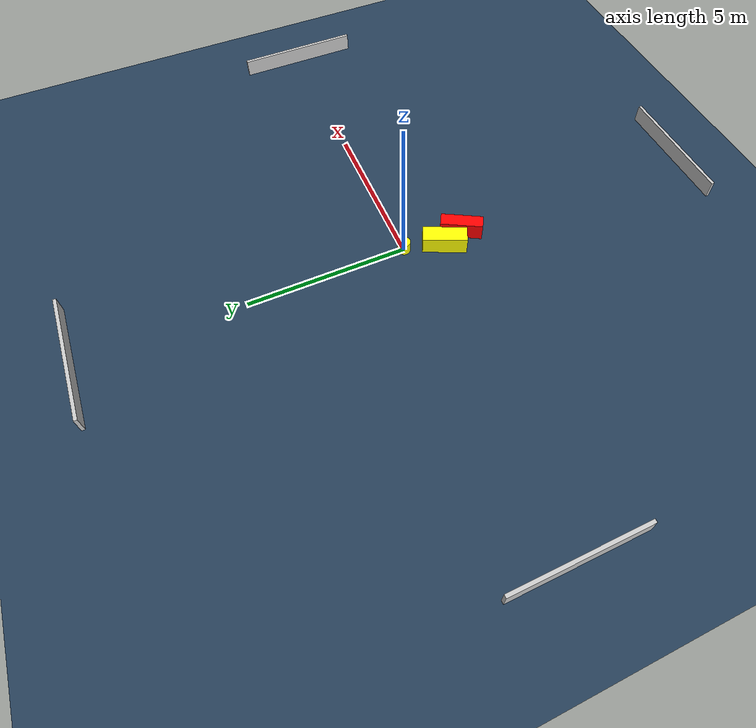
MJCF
<?xml version="1.0" ?>
<mujoco model="generated_environment">
  <option timestep="0.01" integrator="RK4" cone="elliptic"/>
  <default>
    <geom density="1"/>
  </default>
  <asset>
    <texture builtin="gradient" height="3072" name="skybox" rgb1="0.3 0.5 0.7" rgb2="0 0 0" type="skybox" width="512"/>
    <texture builtin="checker" height="300" name="groundplane" rgb1="0.2 0.3 0.4" rgb2="0.1 0.2 0.3" type="2d" width="300"/>
    <material name="groundplane" reflectance="0.2" texrepeat="5 5" texture="groundplane"/>
  </asset>
  <worldbody>
    <light dir="0 0 -1" directional="true" pos="0 0 1.5"/>
    <geom condim="3" friction="0.5 0.005 0.001" material="groundplane" name="floor" pos="0 0 0" size="0 0 0.05" type="plane"/>
    <body name="walls">
      <geom name="wall_1" condim="4" pos="-10.0 0.0 0.3" rgba="0.800000011920929 0.800000011920929 0.800000011920929 1.0" size="0.05 2.0 0.3" type="box"/>
      <geom name="wall_2" condim="4" pos="10.0 0.0 0.3" rgba="0.800000011920929 0.800000011920929 0.800000011920929 1.0" size="0.05 2.0 0.3" type="box"/>
      <geom name="wall_3" condim="4" pos="0.0 -10.0 0.3" rgba="0.800000011920929 0.800000011920929 0.800000011920929 1.0" size="2.0 0.05 0.3" type="box"/>
      <geom name="wall_4" condim="4" pos="0.0 10.0 0.3" rgba="0.800000011920929 0.800000011920929 0.800000011920929 1.0" size="2.0 0.05 0.3" type="box"/>
    </body>
    <body name="robot">
      <joint name="joint_x" type="slide" pos="0 0 0" axis="1 0 0"/>
      <joint name="joint_y" type="slide" pos="0 0 0" axis="0 1 0"/>
      <geom name="robot" type="cylinder" pos="0.0 0.0 0.2" size="0.2 0.2 0.0" mass="5.0" friction="1.0 0.005 0.0001" condim="4" rgba="1.0 1.0 0.0 1.0"/>
    </body>
    <body name="obstacle_1_movable">
      <geom name="obstacle_1_movable" condim="4" pos="-0.35997589240349975 -1.2078105992928083 0.3" euler="0 0 155.91012119935718" friction="0.0 0.005 0.001" rgba="1.0 1.0 0.0 1.0" size="0.26187170156649936 0.6819932756588334 0.3" type="box" mass="0.1"/>
      <joint type="free"/>
    </body>
    <body name="obstacle_2_static">
      <geom name="obstacle_2_static" condim="4" pos="-0.09546718989559466 -1.914608307898658 0.3" euler="0 0 60.860438344219226" friction="0.0 0.005 0.001" rgba="1.0 0.0 0.0 1.0" size="0.6553349497604304 0.20473078762402522 0.3" type="box"/>
    </body>
  </worldbody>
  <actuator>
    <motor name="actuator_x" joint="joint_x" gear="1" ctrlrange="-1 1"/>
    <motor name="actuator_y" joint="joint_y" gear="1" ctrlrange="-1 1"/>
  </actuator>
</mujoco>
